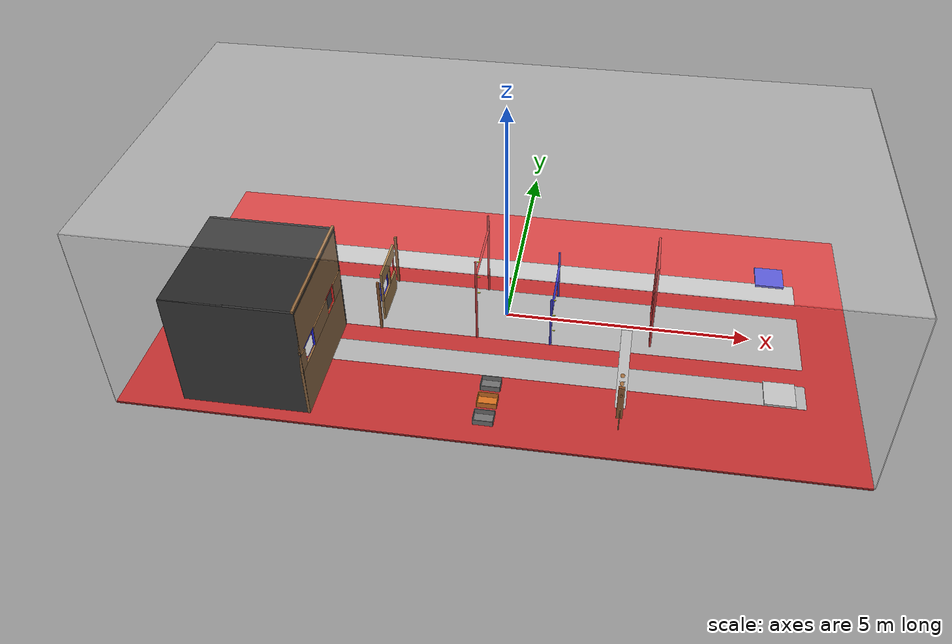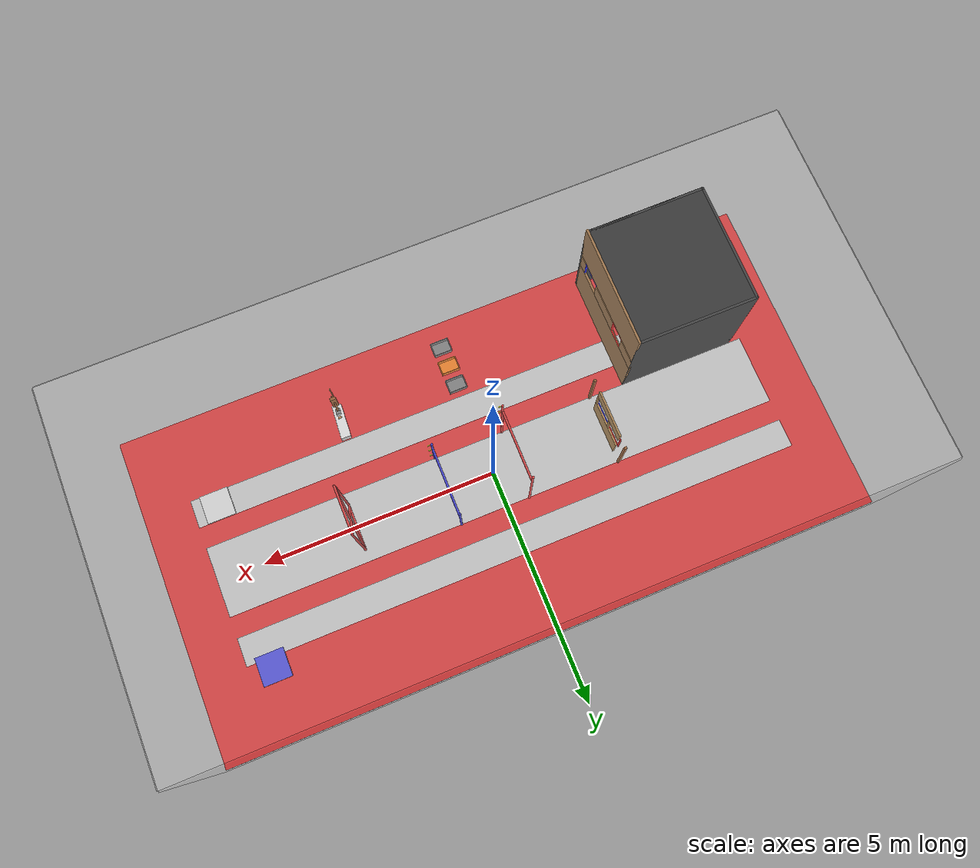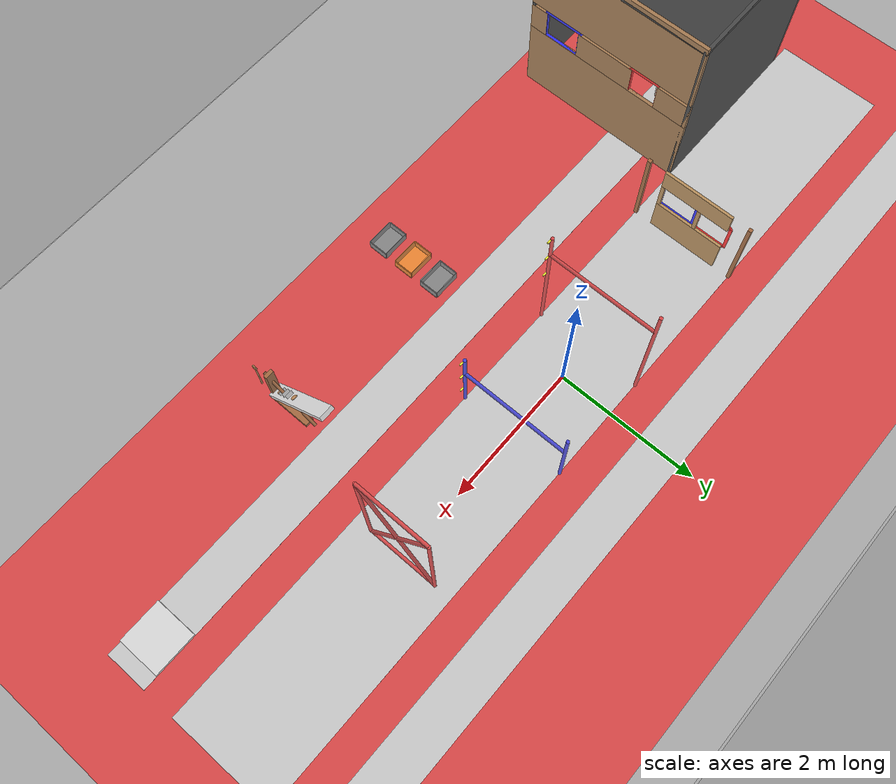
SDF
<?xml version="1.0" ?>
<sdf version="1.9">
  <world name="imav_indoor">

    <!-- Physics -->
    <physics name="1ms" type="ignored">
      <max_step_size>0.001</max_step_size>
      <real_time_factor>1.0</real_time_factor>
    </physics>

    <!-- Plugins -->
    <plugin filename="gz-sim-physics-system"
            name="gz::sim::systems::Physics"/>
    <plugin filename="gz-sim-sensors-system"
            name="gz::sim::systems::Sensors">
      <render_engine>ogre2</render_engine>
    </plugin>
    <plugin filename="gz-sim-scene-broadcaster-system"
            name="gz::sim::systems::SceneBroadcaster"/>
    <plugin filename="gz-sim-user-commands-system"
            name="gz::sim::systems::UserCommands"/>

    <plugin filename="gz-sim-imu-system"
            name="gz::sim::systems::Imu"/>

    <plugin filename="gz-sim-magnetometer-system"
            name="gz::sim::systems::Magnetometer"/>

    <plugin filename="gz-sim-air-pressure-system"
            name="gz::sim::systems::AirPressure"/>

    <plugin filename="gz-sim-navsat-system"
            name="gz::sim::systems::NavSat"/>

    <atmosphere type="adiabatic"/>

    <magnetic_field>6.0e-06 2.3e-05 -4.2e-05</magnetic_field>

    <spherical_coordinates>
      <surface_model>EARTH_WGS84</surface_model>
      <world_frame_orientation>ENU</world_frame_orientation>
      <latitude_deg>47.397742</latitude_deg>
      <longitude_deg>8.545594</longitude_deg>
      <elevation>0</elevation>
      <heading_deg>0</heading_deg>
    </spherical_coordinates>

    <!-- Lighting: main ceiling light -->
    <light type="directional" name="ceiling_light">
      <pose>0 0 4 0 0 0</pose>
      <diffuse>0.9 0.9 0.9 1</diffuse>
      <specular>0.2 0.2 0.2 1</specular>
      <direction>0 0 -1</direction>
      <cast_shadows>false</cast_shadows>
    </light>

    <!-- Additional fill light for even illumination -->
    <light type="point" name="fill_light">
      <pose>0 0 3.5 0 0 0</pose>
      <diffuse>0.5 0.5 0.5 1</diffuse>
      <specular>0.1 0.1 0.1 1</specular>
      <attenuation>
        <range>20</range>
        <linear>0.05</linear>
        <constant>0.8</constant>
      </attenuation>
      <cast_shadows>false</cast_shadows>
    </light>

    <!-- ===== ARENA STRUCTURE ===== -->
    <include>
      <uri>model://arena_walls</uri>
      <pose>0 0 0 0 0 0</pose>
    </include>

    <!-- Textured floor strips (flower pattern under obstacle course and side passages) -->
    <include>
      <uri>model://textured_floor</uri>
      <pose>0 0 0.001 0 0 0</pose>
    </include>

    <!-- ===== MISSION 1: OBSTACLE COURSE ===== -->

    <!-- Takeoff platform (fixed, ArUco Id0) -->
    <include>
      <uri>model://landing_platform_fixed</uri>
      <name>takeoff_platform</name>
      <pose>5.5 -1.5 0 0 0 0</pose>
    </include>

    <!-- Obstacle 1: Window frame (blue 500x400 + red 400x400 openings) -->
    <include>
      <uri>model://window_frame</uri>
      <name>window_obstacle</name>
      <pose>-2.5 0 0 0 0 0</pose>
    </include>

    <!-- Obstacle 2: Red bar (fly over, default 1600mm) -->
    <include>
      <uri>model://red_bar</uri>
      <name>red_bar</name>
      <pose>-0.5 0 0 0 0 0</pose>
    </include>

    <!-- Obstacle 3: Blue bar (fly under, default 800mm) -->
    <include>
      <uri>model://blue_bar</uri>
      <name>blue_bar</name>
      <pose>1.0 0 0 0 0 0</pose>
    </include>

    <!-- Obstacle 4: Pipe/tube X-crossing structure -->
    <include>
      <uri>model://pipe_obstacle</uri>
      <name>pipe_obstacle</name>
      <pose>3.0 0 0 0 0 0</pose>
    </include>

    <!-- Landing platform (moving, ArUco Id1).
         Spring world joint oscillates ±0.5m around this include pose in world Y.
         Oscillation range: Y = [1.0, 2.0], centered on right stripe at Y=1.5. -->
    <include>
      <uri>model://landing_moving_platform</uri>
      <name>landing_platform_moving</name>
      <pose>5.5 1.5 0 0 0 0</pose>
    </include>

    <!-- ===== MISSION 2: DARK ROOM INSPECTION ===== -->
    <!-- Dark room: 2.5m cube. Rotated -90° in yaw so the front wall
         (windows) faces toward Y=0 (the obstacle course). -->
    <include>
      <uri>model://dark_room</uri>
      <name>dark_room</name>
      <pose>-4.5 -2.0 0 0 0 3.14159</pose>
    </include>

    <!-- ===== MISSION 3: HOT SPOT DROP ===== -->
    <!-- Three boxes (396x278x132mm), center box is hot spot. -->
    <include>
      <uri>model://hot_spot_boxes</uri>
      <name>hot_spot_boxes</name>
      <pose>0 -2.5 0 0 0 0</pose>
    </include>

    <!-- ===== MISSION 4: WIND TURBINE INSPECTION ===== -->
    <!-- Blade tilted 45°, copper disc targets, ArUco Id4/5/6, ring stand. -->
    <include>
      <uri>model://wind_turbine_blade</uri>
      <name>wind_turbine</name>
      <pose>2.5 -2.5 0 0 0 1.5708</pose>
    </include>

  </world>
</sdf>

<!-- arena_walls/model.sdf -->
<!-- models/arena_walls/model.sdf -->
<sdf version="1.9">
  <model name="arena_walls">
    <static>true</static>

    <!-- Floor -->
    <link name="floor">
      <collision name="floor_col">
        <geometry><box><size>14 7 0.05</size></box></geometry>
      </collision>
      <visual name="floor_vis">
        <geometry><box><size>14 7 0.05</size></box></geometry>
        <material>
          <ambient>0.8 0.1 0.1 1</ambient>  <!-- red carpet -->
          <diffuse>0.8 0.1 0.1 1</diffuse>
        </material>
      </visual>
      <pose>0 0 -0.025 0 0 0</pose>
    </link>

    <!-- Ceiling (transparent, for realism) -->
    <link name="ceiling">
      <pose>0 0 4 0 0 0</pose>
      <collision name="ceiling_col">
        <geometry><box><size>14 7 0.05</size></box></geometry>
      </collision>
      <visual name="ceiling_vis">
        <geometry><box><size>14 7 0.05</size></box></geometry>
        <material><ambient>1 1 1 0.1</ambient></material>
      </visual>
    </link>

    <!-- North wall -->
    <link name="wall_north">
      <pose>0 3.5 2 0 0 0</pose>
      <collision name="col">
        <geometry><box><size>14 0.05 4</size></box></geometry>
      </collision>
      <visual name="vis">
        <geometry><box><size>14 0.05 4</size></box></geometry>
        <material><ambient>0.9 0.9 0.9 0.1</ambient><diffuse>0.9 0.9 0.9 0.1</diffuse></material>
      </visual>
    </link>

    <!-- South wall -->
    <link name="wall_south">
      <pose>0 -3.5 2 0 0 0</pose>
      <collision name="col">
        <geometry><box><size>14 0.05 4</size></box></geometry>
      </collision>
      <visual name="vis">
        <geometry><box><size>14 0.05 4</size></box></geometry>
        <material><ambient>0.9 0.9 0.9 0.1</ambient><diffuse>0.9 0.9 0.9 0.1</diffuse></material>
      </visual>
    </link>

    <!-- East wall -->
    <link name="wall_east">
      <pose>7 0 2 0 0 0</pose>
      <collision name="col">
        <geometry><box><size>0.05 7 4</size></box></geometry>
      </collision>
      <visual name="vis">
        <geometry><box><size>0.05 7 4</size></box></geometry>
        <material><ambient>0.9 0.9 0.9 0.1</ambient><diffuse>0.9 0.9 0.9 0.1</diffuse></material>
      </visual>
    </link>

    <!-- West wall -->
    <link name="wall_west">
      <pose>-7 0 2 0 0 0</pose>
      <collision name="col">
        <geometry><box><size>0.05 7 4</size></box></geometry>
      </collision>
      <visual name="vis">
        <geometry><box><size>0.05 7 4</size></box></geometry>
        <material><ambient>0.9 0.9 0.9 0.1</ambient><diffuse>0.9 0.9 0.9 0.1</diffuse></material>
      </visual>
    </link>

  </model>
</sdf>

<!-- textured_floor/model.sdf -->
<!-- Three flower-textured floor strips as per rulebook Fig.7 -->
<sdf version="1.9">
  <model name="textured_floor">
    <static>true</static>
    <link name="link">

      <!-- Left side passage strip (Y = -1.5m) -->
      <visual name="left_strip">
        <pose>0 -1.5 0 0 0 0</pose>
        <geometry><box><size>12 0.6 0.002</size></box></geometry>
        <material>
          <pbr>
            <metal>
              <albedo_map>materials/flower_texture.png</albedo_map>
            </metal>
          </pbr>
        </material>
      </visual>

      <!-- Center obstacle course strip (Y = 0) -->
      <visual name="center_strip">
        <pose>0 0 0 0 0 0</pose>
        <geometry><box><size>12 1.5 0.002</size></box></geometry>
        <material>
          <pbr>
            <metal>
              <albedo_map>materials/flower_texture.png</albedo_map>
            </metal>
          </pbr>
        </material>
      </visual>

      <!-- Right side passage strip (Y = +1.5m) -->
      <visual name="right_strip">
        <pose>0 1.5 0 0 0 0</pose>
        <geometry><box><size>12 0.6 0.002</size></box></geometry>
        <material>
          <pbr>
            <metal>
              <albedo_map>materials/flower_texture.png</albedo_map>
            </metal>
          </pbr>
        </material>
      </visual>

    </link>
  </model>
</sdf>

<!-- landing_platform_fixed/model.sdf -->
<!-- Fixed takeoff/landing platform with ArUco ID 0 on top surface.
     1.0 x 1.0m, 50mm thick. -->
<sdf version="1.9">
  <model name="landing_platform_fixed">
    <static>true</static>

    <link name="platform">
      <pose>0 0 0.025 0 0 0</pose>
      <collision name="col">
        <geometry><box><size>0.6 0.6 0.05</size></box></geometry>
      </collision>
      <visual name="vis">
        <geometry><box><size>0.6 0.6 0.05</size></box></geometry>
        <material>
          <ambient>0.8 0.8 0.8 1</ambient>
          <diffuse>0.8 0.8 0.8 1</diffuse>
          <pbr>
            <metal>
              <albedo_map>materials/textures/aruco_markers/id_0_takeoff.png</albedo_map>
            </metal>
          </pbr>
        </material>
      </visual>
    </link>

  </model>
</sdf>

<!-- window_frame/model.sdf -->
<sdf version="1.9">
  <model name="window_frame">
    <static>true</static>

    <!-- Left post (y = -0.75) -->
    <link name="post_left">
      <pose>0 -0.75 0.6 0 0 0</pose>
      <collision name="col"><geometry><box><size>0.05 0.05 1.2</size></box></geometry></collision>
      <visual name="vis">
        <geometry><box><size>0.05 0.05 1.2</size></box></geometry>
        <material><ambient>0.55 0.27 0.07 1</ambient><diffuse>0.55 0.27 0.07 1</diffuse></material>
      </visual>
    </link>

    <!-- Right post (y = +0.75) -->
    <link name="post_right">
      <pose>0 0.75 0.6 0 0 0</pose>
      <collision name="col"><geometry><box><size>0.05 0.05 1.2</size></box></geometry></collision>
      <visual name="vis">
        <geometry><box><size>0.05 0.05 1.2</size></box></geometry>
        <material><ambient>0.55 0.27 0.07 1</ambient><diffuse>0.55 0.27 0.07 1</diffuse></material>
      </visual>
    </link>

    <!-- Board bottom panel: full width, below windows (z=0 to 0.5) -->
    <link name="board_bottom">
      <pose>0 0 0.25 0 0 0</pose>
      <collision name="col"><geometry><box><size>0.04 1.0 0.5</size></box></geometry></collision>
      <visual name="vis">
        <geometry><box><size>0.04 1.0 0.5</size></box></geometry>
        <material><ambient>0.65 0.45 0.2 1</ambient><diffuse>0.65 0.45 0.2 1</diffuse></material>
      </visual>
    </link>

    <!-- Board top panel: full width, above windows (z=0.9 to 1.2) -->
    <link name="board_top">
      <pose>0 0 1.05 0 0 0</pose>
      <collision name="col"><geometry><box><size>0.04 1.0 0.3</size></box></geometry></collision>
      <visual name="vis">
        <geometry><box><size>0.04 1.0 0.3</size></box></geometry>
        <material><ambient>0.65 0.45 0.2 1</ambient><diffuse>0.65 0.45 0.2 1</diffuse></material>
      </visual>
    </link>

    <!-- Board left sliver: left of blue window (y=-0.5 to -0.45), window level -->
    <link name="board_left_sliver">
      <pose>0 -0.475 0.7 0 0 0</pose>
      <collision name="col"><geometry><box><size>0.04 0.05 0.4</size></box></geometry></collision>
      <visual name="vis">
        <geometry><box><size>0.04 0.05 0.4</size></box></geometry>
        <material><ambient>0.65 0.45 0.2 1</ambient><diffuse>0.65 0.45 0.2 1</diffuse></material>
      </visual>
    </link>

    <!-- Board middle sliver: between windows (y=+0.05 to +0.10) -->
    <link name="board_mid_sliver">
      <pose>0 0.075 0.7 0 0 0</pose>
      <collision name="col"><geometry><box><size>0.04 0.05 0.4</size></box></geometry></collision>
      <visual name="vis">
        <geometry><box><size>0.04 0.05 0.4</size></box></geometry>
        <material><ambient>0.65 0.45 0.2 1</ambient><diffuse>0.65 0.45 0.2 1</diffuse></material>
      </visual>
    </link>

    <!-- Blue window border (visual only, no collision) -->
    <!-- Blue window spans y=-0.45 to +0.05, z=0.5 to 0.9 -->
    <link name="blue_border_top">
      <pose>-0.03 -0.20 0.92 0 0 0</pose>
      <visual name="vis">
        <geometry><box><size>0.02 0.54 0.04</size></box></geometry>
        <material><ambient>0 0 1 1</ambient><diffuse>0 0 1 1</diffuse></material>
      </visual>
    </link>
    <link name="blue_border_bot">
      <pose>-0.03 -0.20 0.48 0 0 0</pose>
      <visual name="vis">
        <geometry><box><size>0.02 0.54 0.04</size></box></geometry>
        <material><ambient>0 0 1 1</ambient><diffuse>0 0 1 1</diffuse></material>
      </visual>
    </link>
    <link name="blue_border_left">
      <pose>-0.03 -0.475 0.70 0 0 0</pose>
      <visual name="vis">
        <geometry><box><size>0.02 0.04 0.44</size></box></geometry>
        <material><ambient>0 0 1 1</ambient><diffuse>0 0 1 1</diffuse></material>
      </visual>
    </link>
    <link name="blue_border_right">
      <pose>-0.03 0.025 0.70 0 0 0</pose>
      <visual name="vis">
        <geometry><box><size>0.02 0.04 0.44</size></box></geometry>
        <material><ambient>0 0 1 1</ambient><diffuse>0 0 1 1</diffuse></material>
      </visual>
    </link>

    <!-- Red window border (visual only, no collision) -->
    <!-- Red window spans y=+0.10 to +0.50, z=0.5 to 0.9 -->
    <link name="red_border_top">
      <pose>-0.03 0.30 0.92 0 0 0</pose>
      <visual name="vis">
        <geometry><box><size>0.02 0.44 0.04</size></box></geometry>
        <material><ambient>1 0 0 1</ambient><diffuse>1 0 0 1</diffuse></material>
      </visual>
    </link>
    <link name="red_border_bot">
      <pose>-0.03 0.30 0.48 0 0 0</pose>
      <visual name="vis">
        <geometry><box><size>0.02 0.44 0.04</size></box></geometry>
        <material><ambient>1 0 0 1</ambient><diffuse>1 0 0 1</diffuse></material>
      </visual>
    </link>
    <link name="red_border_left">
      <pose>-0.03 0.075 0.70 0 0 0</pose>
      <visual name="vis">
        <geometry><box><size>0.02 0.04 0.44</size></box></geometry>
        <material><ambient>1 0 0 1</ambient><diffuse>1 0 0 1</diffuse></material>
      </visual>
    </link>
    <link name="red_border_right">
      <pose>-0.03 0.525 0.70 0 0 0</pose>
      <visual name="vis">
        <geometry><box><size>0.02 0.04 0.44</size></box></geometry>
        <material><ambient>1 0 0 1</ambient><diffuse>1 0 0 1</diffuse></material>
      </visual>
    </link>

  </model>
</sdf>

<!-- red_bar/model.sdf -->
<sdf version="1.9">
  <model name="red_bar">
    <static>true</static>

    <!-- Left post -->
    <link name="post_left">
      <pose>0 -0.75 0.99 0 0 0</pose>
      <collision name="col"><geometry><cylinder><radius>0.0225</radius><length>1.98</length></cylinder></geometry></collision>
      <visual name="vis">
        <geometry><cylinder><radius>0.0225</radius><length>1.98</length></cylinder></geometry>
        <material><ambient>0.8 0.1 0.1 1</ambient><diffuse>0.8 0.1 0.1 1</diffuse></material>
      </visual>
    </link>

    <!-- Right post -->
    <link name="post_right">
      <pose>0 0.75 0.99 0 0 0</pose>
      <collision name="col"><geometry><cylinder><radius>0.0225</radius><length>1.98</length></cylinder></geometry></collision>
      <visual name="vis">
        <geometry><cylinder><radius>0.0225</radius><length>1.98</length></cylinder></geometry>
        <material><ambient>0.8 0.1 0.1 1</ambient><diffuse>0.8 0.1 0.1 1</diffuse></material>
      </visual>
    </link>

    <!-- Horizontal bar at 1600mm (middle/default height). Cylinder rotated 90° to lie in Y. -->
    <link name="bar">
      <pose>0 0 1.6 1.5708 0 0</pose>
      <collision name="col"><geometry><cylinder><radius>0.0225</radius><length>1.5</length></cylinder></geometry></collision>
      <visual name="vis">
        <geometry><cylinder><radius>0.0225</radius><length>1.5</length></cylinder></geometry>
        <material><ambient>0.8 0.1 0.1 1</ambient><diffuse>0.8 0.1 0.1 1</diffuse></material>
      </visual>
    </link>

    <!-- Height indicator pegs on left post (visual only): low=1.2m, mid=1.6m, high=1.98m -->
    <link name="peg_low">
      <pose>0.06 -0.75 1.2 0 1.5708 0</pose>
      <visual name="vis">
        <geometry><cylinder><radius>0.012</radius><length>0.05</length></cylinder></geometry>
        <material><ambient>1 1 0 1</ambient><diffuse>1 1 0 1</diffuse></material>
      </visual>
    </link>
    <link name="peg_mid">
      <pose>0.06 -0.75 1.6 0 1.5708 0</pose>
      <visual name="vis">
        <geometry><cylinder><radius>0.012</radius><length>0.05</length></cylinder></geometry>
        <material><ambient>1 1 0 1</ambient><diffuse>1 1 0 1</diffuse></material>
      </visual>
    </link>
    <link name="peg_high">
      <pose>0.06 -0.75 1.98 0 1.5708 0</pose>
      <visual name="vis">
        <geometry><cylinder><radius>0.012</radius><length>0.05</length></cylinder></geometry>
        <material><ambient>1 1 0 1</ambient><diffuse>1 1 0 1</diffuse></material>
      </visual>
    </link>

  </model>
</sdf>

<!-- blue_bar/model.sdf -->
<!-- Blue bar obstacle per rulebook Fig.10a.
     Two posts 1200mm tall, 1500mm apart. ONE horizontal bar (drone flies under).
     Bar default at 800mm (middle step). Marks at 400/800/1200mm. -->
<sdf version="1.9">
  <model name="blue_bar">
    <static>true</static>

    <!-- Left post -->
    <link name="post_left">
      <pose>0 -0.75 0.6 0 0 0</pose>
      <collision name="col"><geometry><cylinder><radius>0.0225</radius><length>1.2</length></cylinder></geometry></collision>
      <visual name="vis">
        <geometry><cylinder><radius>0.0225</radius><length>1.2</length></cylinder></geometry>
        <material><ambient>0.1 0.1 0.8 1</ambient><diffuse>0.1 0.1 0.8 1</diffuse></material>
      </visual>
    </link>

    <!-- Right post -->
    <link name="post_right">
      <pose>0 0.75 0.6 0 0 0</pose>
      <collision name="col"><geometry><cylinder><radius>0.0225</radius><length>1.2</length></cylinder></geometry></collision>
      <visual name="vis">
        <geometry><cylinder><radius>0.0225</radius><length>1.2</length></cylinder></geometry>
        <material><ambient>0.1 0.1 0.8 1</ambient><diffuse>0.1 0.1 0.8 1</diffuse></material>
      </visual>
    </link>

    <!-- Horizontal bar at 800mm (middle/default height). -->
    <link name="bar">
      <pose>0 0 0.8 1.5708 0 0</pose>
      <collision name="col"><geometry><cylinder><radius>0.0225</radius><length>1.5</length></cylinder></geometry></collision>
      <visual name="vis">
        <geometry><cylinder><radius>0.0225</radius><length>1.5</length></cylinder></geometry>
        <material><ambient>0.1 0.1 0.8 1</ambient><diffuse>0.1 0.1 0.8 1</diffuse></material>
      </visual>
    </link>

    <!-- Height indicator pegs (visual only): low=0.4m, mid=0.8m, high=1.2m -->
    <link name="peg_low">
      <pose>0.06 -0.75 0.4 0 1.5708 0</pose>
      <visual name="vis">
        <geometry><cylinder><radius>0.012</radius><length>0.05</length></cylinder></geometry>
        <material><ambient>1 1 0 1</ambient><diffuse>1 1 0 1</diffuse></material>
      </visual>
    </link>
    <link name="peg_mid">
      <pose>0.06 -0.75 0.8 0 1.5708 0</pose>
      <visual name="vis">
        <geometry><cylinder><radius>0.012</radius><length>0.05</length></cylinder></geometry>
        <material><ambient>1 1 0 1</ambient><diffuse>1 1 0 1</diffuse></material>
      </visual>
    </link>
    <link name="peg_high">
      <pose>0.06 -0.75 1.2 0 1.5708 0</pose>
      <visual name="vis">
        <geometry><cylinder><radius>0.012</radius><length>0.05</length></cylinder></geometry>
        <material><ambient>1 1 0 1</ambient><diffuse>1 1 0 1</diffuse></material>
      </visual>
    </link>

  </model>
</sdf>

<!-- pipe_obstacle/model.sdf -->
<sdf version="1.9">
  <model name="pipe_obstacle">
    <static>true</static>

    <!-- Vertical posts at x=0, y=±0.5 -->
    <link name="post_left">
      <pose>0 -0.5 1.0 0 0 0</pose>
      <collision name="col"><geometry><cylinder><radius>0.0225</radius><length>2.0</length></cylinder></geometry></collision>
      <visual name="vis">
        <geometry><cylinder><radius>0.0225</radius><length>2.0</length></cylinder></geometry>
        <material><ambient>0.8 0.1 0.1 1</ambient><diffuse>0.8 0.1 0.1 1</diffuse></material>
      </visual>
    </link>

    <link name="post_right">
      <pose>0 0.5 1.0 0 0 0</pose>
      <collision name="col"><geometry><cylinder><radius>0.0225</radius><length>2.0</length></cylinder></geometry></collision>
      <visual name="vis">
        <geometry><cylinder><radius>0.0225</radius><length>2.0</length></cylinder></geometry>
        <material><ambient>0.8 0.1 0.1 1</ambient><diffuse>0.8 0.1 0.1 1</diffuse></material>
      </visual>
    </link>

    <!-- Diagonal 1: (y=-0.5,z=0) → (y=+0.5,z=2.0). Center at (y=0,z=1.0). Roll = -0.4636 rad. -->
    <link name="diag_1">
      <pose>0 0 1.0 -0.4636 0 0</pose>
      <collision name="col"><geometry><cylinder><radius>0.0225</radius><length>2.236</length></cylinder></geometry></collision>
      <visual name="vis">
        <geometry><cylinder><radius>0.0225</radius><length>2.236</length></cylinder></geometry>
        <material><ambient>0.8 0.1 0.1 1</ambient><diffuse>0.8 0.1 0.1 1</diffuse></material>
      </visual>
    </link>

    <!-- Diagonal 2: (y=+0.5,z=0) → (y=-0.5,z=2.0). Center at (y=0,z=1.0). Roll = +0.4636 rad. -->
    <link name="diag_2">
      <pose>0 0 1.0 0.4636 0 0</pose>
      <collision name="col"><geometry><cylinder><radius>0.0225</radius><length>2.236</length></cylinder></geometry></collision>
      <visual name="vis">
        <geometry><cylinder><radius>0.0225</radius><length>2.236</length></cylinder></geometry>
        <material><ambient>0.8 0.1 0.1 1</ambient><diffuse>0.8 0.1 0.1 1</diffuse></material>
      </visual>
    </link>

    <!-- Top cross-beam connecting posts -->
    <link name="top_beam">
      <pose>0 0 2.0 1.5708 0 0</pose>
      <collision name="col"><geometry><cylinder><radius>0.0225</radius><length>1.0</length></cylinder></geometry></collision>
      <visual name="vis">
        <geometry><cylinder><radius>0.0225</radius><length>1.0</length></cylinder></geometry>
        <material><ambient>0.8 0.1 0.1 1</ambient><diffuse>0.8 0.1 0.1 1</diffuse></material>
      </visual>
    </link>

    <!-- Bottom cross-beam connecting posts -->
    <link name="bot_beam">
      <pose>0 0 0.05 1.5708 0 0</pose>
      <collision name="col"><geometry><cylinder><radius>0.0225</radius><length>1.0</length></cylinder></geometry></collision>
      <visual name="vis">
        <geometry><cylinder><radius>0.0225</radius><length>1.0</length></cylinder></geometry>
        <material><ambient>0.8 0.1 0.1 1</ambient><diffuse>0.8 0.1 0.1 1</diffuse></material>
      </visual>
    </link>

  </model>
</sdf>

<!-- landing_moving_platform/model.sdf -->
<sdf version="1.9">
  <model name="landing_platform_moving">

    <link name="base">
      <!-- Initial Y offset gives the spring its starting displacement -->
      <pose>0 0.5 0.025 0 0 0</pose>
      <inertial>
        <mass>5.0</mass>
        <inertia>
          <ixx>0.151</ixx><iyy>0.151</iyy><izz>0.300</izz>
          <ixy>0</ixy><ixz>0</ixz><iyz>0</iyz>
        </inertia>
      </inertial>
      <collision name="col">
        <geometry><box><size>0.6 0.6 0.05</size></box></geometry>
        <surface>
          <friction>
            <ode><mu>0</mu><mu2>0</mu2></ode>
          </friction>
          <contact>
            <ode><max_vel>0</max_vel></ode>
          </contact>
        </surface>
      </collision>
      <visual name="vis">
        <geometry><box><size>0.6 0.6 0.05</size></box></geometry>
        <material>
          <ambient>0.2 0.2 0.8 1</ambient>
          <diffuse>0.2 0.2 0.8 1</diffuse>
          <pbr>
            <metal>
              <albedo_map>materials/textures/aruco_markers/id_1_landing.png</albedo_map>
            </metal>
          </pbr>
        </material>
      </visual>
    </link>

    <joint name="world_joint" type="prismatic">
      <parent>world</parent>
      <child>base</child>
      <axis>
        <xyz>0 1 0</xyz>
        <dynamics>
          <spring_reference>0</spring_reference>
          <spring_stiffness>3.09</spring_stiffness>
          <damping>0.5</damping>
        </dynamics>
        <limit>
          <lower>-0.6</lower>
          <upper>0.6</upper>
        </limit>
      </axis>
    </joint>

  </model>
</sdf>

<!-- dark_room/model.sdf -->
<sdf version="1.9">
  <model name="dark_room">
    <static>true</static>

    <!-- ==================== FRONT WALL (with windows) ==================== -->
    <!-- Wall is at local x = -1.25, windows face +x direction -->

    <!-- Bottom strip: full width, below both windows -->
    <link name="front_bottom">
      <pose>-1.225 0 0.525 0 0 0</pose>
      <visual name="vis">
        <geometry><box><size>0.05 2.5 1.05</size></box></geometry>
        <material><ambient>0.55 0.35 0.15 1</ambient><diffuse>0.55 0.35 0.15 1</diffuse></material>
      </visual>
      <collision name="col">
        <geometry><box><size>0.05 2.5 1.05</size></box></geometry>
      </collision>
    </link>

    <!-- Top strip: full width, above both windows -->
    <link name="front_top">
      <pose>-1.225 0 2.025 0 0 0</pose>
      <visual name="vis">
        <geometry><box><size>0.05 2.5 1.05</size></box></geometry>
        <material><ambient>0.55 0.35 0.15 1</ambient><diffuse>0.55 0.35 0.15 1</diffuse></material>
      </visual>
      <collision name="col">
        <geometry><box><size>0.05 2.5 1.05</size></box></geometry>
      </collision>
    </link>

    <!-- Left panel: solid, left of red window -->
    <!-- Red window spans y: -0.75 to -0.35, width = 0.40m -->
    <link name="front_left">
      <pose>-1.225 -1.0 1.25 0 0 0</pose>
      <visual name="vis">
        <geometry><box><size>0.05 0.5 0.40</size></box></geometry>
        <material><ambient>0.55 0.35 0.15 1</ambient><diffuse>0.55 0.35 0.15 1</diffuse></material>
      </visual>
      <collision name="col">
        <geometry><box><size>0.05 0.5 0.40</size></box></geometry>
      </collision>
    </link>

    <!-- Middle panel: between red and blue windows -->
    <!-- Between y=-0.35 and y=0.50, width = 0.85m -->
    <link name="front_middle">
      <pose>-1.225 0.075 1.25 0 0 0</pose>
      <visual name="vis">
        <geometry><box><size>0.05 0.85 0.40</size></box></geometry>
        <material><ambient>0.55 0.35 0.15 1</ambient><diffuse>0.55 0.35 0.15 1</diffuse></material>
      </visual>
      <collision name="col">
        <geometry><box><size>0.05 0.85 0.40</size></box></geometry>
      </collision>
    </link>

    <!-- Right panel: right of blue window -->
    <!-- Blue window spans y: 0.50 to 1.00, width = 0.50m -->
    <link name="front_right">
      <pose>-1.225 1.125 1.25 0 0 0</pose>
      <visual name="vis">
        <geometry><box><size>0.05 0.25 0.40</size></box></geometry>
        <material><ambient>0.55 0.35 0.15 1</ambient><diffuse>0.55 0.35 0.15 1</diffuse></material>
      </visual>
      <collision name="col">
        <geometry><box><size>0.05 0.25 0.40</size></box></geometry>
      </collision>
    </link>

    <!-- ==================== WINDOW FRAMES ==================== -->

    <!-- Red window frame (400x400mm opening) -->
    <!-- Top border -->
    <link name="red_win_top">
      <pose>-1.225 -0.55 1.475 0 0 0</pose>
      <visual name="vis">
        <geometry><box><size>0.04 0.44 0.05</size></box></geometry>
        <material><ambient>1 0 0 1</ambient><diffuse>1 0 0 1</diffuse></material>
      </visual>
      <collision name="col"><geometry><box><size>0.04 0.44 0.05</size></box></geometry></collision>
    </link>
    <!-- Bottom border -->
    <link name="red_win_bot">
      <pose>-1.225 -0.55 1.025 0 0 0</pose>
      <visual name="vis">
        <geometry><box><size>0.04 0.44 0.05</size></box></geometry>
        <material><ambient>1 0 0 1</ambient><diffuse>1 0 0 1</diffuse></material>
      </visual>
      <collision name="col"><geometry><box><size>0.04 0.44 0.05</size></box></geometry></collision>
    </link>
    <!-- Left border -->
    <link name="red_win_left">
      <pose>-1.225 -0.77 1.25 0 0 0</pose>
      <visual name="vis">
        <geometry><box><size>0.04 0.05 0.40</size></box></geometry>
        <material><ambient>1 0 0 1</ambient><diffuse>1 0 0 1</diffuse></material>
      </visual>
      <collision name="col"><geometry><box><size>0.04 0.05 0.40</size></box></geometry></collision>
    </link>
    <!-- Right border -->
    <link name="red_win_right">
      <pose>-1.225 -0.33 1.25 0 0 0</pose>
      <visual name="vis">
        <geometry><box><size>0.04 0.05 0.40</size></box></geometry>
        <material><ambient>1 0 0 1</ambient><diffuse>1 0 0 1</diffuse></material>
      </visual>
      <collision name="col"><geometry><box><size>0.04 0.05 0.40</size></box></geometry></collision>
    </link>

    <!-- Blue window frame (500x400mm opening) -->
    <!-- Top border -->
    <link name="blue_win_top">
      <pose>-1.225 0.75 1.475 0 0 0</pose>
      <visual name="vis">
        <geometry><box><size>0.04 0.54 0.05</size></box></geometry>
        <material><ambient>0 0 1 1</ambient><diffuse>0 0 1 1</diffuse></material>
      </visual>
      <collision name="col"><geometry><box><size>0.04 0.54 0.05</size></box></geometry></collision>
    </link>
    <!-- Bottom border -->
    <link name="blue_win_bot">
      <pose>-1.225 0.75 1.025 0 0 0</pose>
      <visual name="vis">
        <geometry><box><size>0.04 0.54 0.05</size></box></geometry>
        <material><ambient>0 0 1 1</ambient><diffuse>0 0 1 1</diffuse></material>
      </visual>
      <collision name="col"><geometry><box><size>0.04 0.54 0.05</size></box></geometry></collision>
    </link>
    <!-- Left border -->
    <link name="blue_win_left">
      <pose>-1.225 0.48 1.25 0 0 0</pose>
      <visual name="vis">
        <geometry><box><size>0.04 0.05 0.40</size></box></geometry>
        <material><ambient>0 0 1 1</ambient><diffuse>0 0 1 1</diffuse></material>
      </visual>
      <collision name="col"><geometry><box><size>0.04 0.05 0.40</size></box></geometry></collision>
    </link>
    <!-- Right border -->
    <link name="blue_win_right">
      <pose>-1.225 1.02 1.25 0 0 0</pose>
      <visual name="vis">
        <geometry><box><size>0.04 0.05 0.40</size></box></geometry>
        <material><ambient>0 0 1 1</ambient><diffuse>0 0 1 1</diffuse></material>
      </visual>
      <collision name="col"><geometry><box><size>0.04 0.05 0.40</size></box></geometry></collision>
    </link>

    <!-- ==================== REMAINING WALLS ==================== -->

    <!-- Back wall (solid) -->
    <link name="wall_back">
      <pose>1.225 0 1.25 0 0 0</pose>
      <visual name="vis">
        <geometry><box><size>0.05 2.5 2.5</size></box></geometry>
        <material><ambient>0.1 0.1 0.1 1</ambient><diffuse>0.1 0.1 0.1 1</diffuse></material>
      </visual>
      <collision name="col"><geometry><box><size>0.05 2.5 2.5</size></box></geometry></collision>
    </link>

    <!-- Left wall -->
    <link name="wall_left">
      <pose>0 -1.225 1.25 0 0 0</pose>
      <visual name="vis">
        <geometry><box><size>2.5 0.05 2.5</size></box></geometry>
        <material><ambient>0.1 0.1 0.1 1</ambient><diffuse>0.1 0.1 0.1 1</diffuse></material>
      </visual>
      <collision name="col"><geometry><box><size>2.5 0.05 2.5</size></box></geometry></collision>
    </link>

    <!-- Right wall -->
    <link name="wall_right">
      <pose>0 1.225 1.25 0 0 0</pose>
      <visual name="vis">
        <geometry><box><size>2.5 0.05 2.5</size></box></geometry>
        <material><ambient>0.1 0.1 0.1 1</ambient><diffuse>0.1 0.1 0.1 1</diffuse></material>
      </visual>
      <collision name="col"><geometry><box><size>2.5 0.05 2.5</size></box></geometry></collision>
    </link>

    <!-- Ceiling -->
    <link name="ceiling">
      <pose>0 0 2.475 0 0 0</pose>
      <visual name="vis">
        <geometry><box><size>2.5 2.5 0.05</size></box></geometry>
        <material><ambient>0.05 0.05 0.05 1</ambient><diffuse>0.05 0.05 0.05 1</diffuse></material>
      </visual>
      <collision name="col"><geometry><box><size>2.5 2.5 0.05</size></box></geometry></collision>
    </link>

    <!-- ==================== INTERIOR LIGHT (very dim) ==================== -->
    <light name="interior_light" type="point">
      <pose>0 0 2.2 0 0 0</pose>
      <diffuse>0.05 0.05 0.05 1</diffuse>    <!-- very dark -->
      <specular>0 0 0 1</specular>
      <attenuation>
        <range>3</range>
        <linear>0.5</linear>
        <constant>0.8</constant>
      </attenuation>
      <cast_shadows>false</cast_shadows>
    </light>

    <!-- ==================== BABY PLACEHOLDERS ==================== -->
    <!-- Reposition these on competition day -->

    <link name="baby_1">
      <pose>0.5 0.3 0.2 0 0 0</pose>
      <visual name="vis">
        <geometry><cylinder><radius>0.1</radius><length>0.35</length></cylinder></geometry>
        <material><ambient>0.9 0.8 0.7 1</ambient></material>
      </visual>
    </link>

    <link name="baby_2">
      <pose>-0.3 -0.4 0.2 0 0 0</pose>
      <visual name="vis">
        <geometry><cylinder><radius>0.1</radius><length>0.35</length></cylinder></geometry>
        <material><ambient>0.9 0.8 0.7 1</ambient></material>
      </visual>
    </link>

  </model>
</sdf>

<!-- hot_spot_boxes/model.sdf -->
<sdf version="1.9">
  <model name="hot_spot_boxes">
    <static>true</static>

    <!-- Wall thickness -->
    <!-- Box outer: 0.396 x 0.278 x 0.132m. Wall thickness: 0.01m. -->

    <!-- ===== LEFT BOX (y = -0.438m center, cold) ===== -->
    <link name="left_base">
      <pose>0 -0.438 0.005 0 0 0</pose>
      <collision name="col"><geometry><box><size>0.396 0.278 0.01</size></box></geometry></collision>
      <visual name="vis">
        <geometry><box><size>0.396 0.278 0.01</size></box></geometry>
        <material><ambient>0.4 0.4 0.4 1</ambient><diffuse>0.4 0.4 0.4 1</diffuse></material>
      </visual>
    </link>
    <link name="left_front">
      <pose>0.193 -0.438 0.066 0 0 0</pose>
      <collision name="col"><geometry><box><size>0.01 0.278 0.122</size></box></geometry></collision>
      <visual name="vis">
        <geometry><box><size>0.01 0.278 0.122</size></box></geometry>
        <material><ambient>0.4 0.4 0.4 1</ambient><diffuse>0.4 0.4 0.4 1</diffuse></material>
      </visual>
    </link>
    <link name="left_back">
      <pose>-0.193 -0.438 0.066 0 0 0</pose>
      <collision name="col"><geometry><box><size>0.01 0.278 0.122</size></box></geometry></collision>
      <visual name="vis">
        <geometry><box><size>0.01 0.278 0.122</size></box></geometry>
        <material><ambient>0.4 0.4 0.4 1</ambient><diffuse>0.4 0.4 0.4 1</diffuse></material>
      </visual>
    </link>
    <link name="left_sideL">
      <pose>0 -0.577 0.066 0 0 0</pose>
      <collision name="col"><geometry><box><size>0.376 0.01 0.122</size></box></geometry></collision>
      <visual name="vis">
        <geometry><box><size>0.376 0.01 0.122</size></box></geometry>
        <material><ambient>0.4 0.4 0.4 1</ambient><diffuse>0.4 0.4 0.4 1</diffuse></material>
      </visual>
    </link>
    <link name="left_sideR">
      <pose>0 -0.299 0.066 0 0 0</pose>
      <collision name="col"><geometry><box><size>0.376 0.01 0.122</size></box></geometry></collision>
      <visual name="vis">
        <geometry><box><size>0.376 0.01 0.122</size></box></geometry>
        <material><ambient>0.4 0.4 0.4 1</ambient><diffuse>0.4 0.4 0.4 1</diffuse></material>
      </visual>
    </link>

    <!-- ===== CENTER BOX (y = 0.0, HOT - orange) ===== -->
    <link name="hot_base">
      <pose>0 0 0.005 0 0 0</pose>
      <collision name="col"><geometry><box><size>0.396 0.278 0.01</size></box></geometry></collision>
      <visual name="vis">
        <geometry><box><size>0.396 0.278 0.01</size></box></geometry>
        <material><ambient>0.9 0.4 0.0 1</ambient><diffuse>0.9 0.4 0.0 1</diffuse></material>
      </visual>
    </link>
    <link name="hot_front">
      <pose>0.193 0 0.066 0 0 0</pose>
      <collision name="col"><geometry><box><size>0.01 0.278 0.122</size></box></geometry></collision>
      <visual name="vis">
        <geometry><box><size>0.01 0.278 0.122</size></box></geometry>
        <material><ambient>0.9 0.4 0.0 1</ambient><diffuse>0.9 0.4 0.0 1</diffuse></material>
      </visual>
    </link>
    <link name="hot_back">
      <pose>-0.193 0 0.066 0 0 0</pose>
      <collision name="col"><geometry><box><size>0.01 0.278 0.122</size></box></geometry></collision>
      <visual name="vis">
        <geometry><box><size>0.01 0.278 0.122</size></box></geometry>
        <material><ambient>0.9 0.4 0.0 1</ambient><diffuse>0.9 0.4 0.0 1</diffuse></material>
      </visual>
    </link>
    <link name="hot_sideL">
      <pose>0 -0.139 0.066 0 0 0</pose>
      <collision name="col"><geometry><box><size>0.376 0.01 0.122</size></box></geometry></collision>
      <visual name="vis">
        <geometry><box><size>0.376 0.01 0.122</size></box></geometry>
        <material><ambient>0.9 0.4 0.0 1</ambient><diffuse>0.9 0.4 0.0 1</diffuse></material>
      </visual>
    </link>
    <link name="hot_sideR">
      <pose>0 0.139 0.066 0 0 0</pose>
      <collision name="col"><geometry><box><size>0.376 0.01 0.122</size></box></geometry></collision>
      <visual name="vis">
        <geometry><box><size>0.376 0.01 0.122</size></box></geometry>
        <material><ambient>0.9 0.4 0.0 1</ambient><diffuse>0.9 0.4 0.0 1</diffuse></material>
      </visual>
    </link>

    <!-- ===== RIGHT BOX (y = +0.438m, cold) ===== -->
    <link name="right_base">
      <pose>0 0.438 0.005 0 0 0</pose>
      <collision name="col"><geometry><box><size>0.396 0.278 0.01</size></box></geometry></collision>
      <visual name="vis">
        <geometry><box><size>0.396 0.278 0.01</size></box></geometry>
        <material><ambient>0.4 0.4 0.4 1</ambient><diffuse>0.4 0.4 0.4 1</diffuse></material>
      </visual>
    </link>
    <link name="right_front">
      <pose>0.193 0.438 0.066 0 0 0</pose>
      <collision name="col"><geometry><box><size>0.01 0.278 0.122</size></box></geometry></collision>
      <visual name="vis">
        <geometry><box><size>0.01 0.278 0.122</size></box></geometry>
        <material><ambient>0.4 0.4 0.4 1</ambient><diffuse>0.4 0.4 0.4 1</diffuse></material>
      </visual>
    </link>
    <link name="right_back">
      <pose>-0.193 0.438 0.066 0 0 0</pose>
      <collision name="col"><geometry><box><size>0.01 0.278 0.122</size></box></geometry></collision>
      <visual name="vis">
        <geometry><box><size>0.01 0.278 0.122</size></box></geometry>
        <material><ambient>0.4 0.4 0.4 1</ambient><diffuse>0.4 0.4 0.4 1</diffuse></material>
      </visual>
    </link>
    <link name="right_sideL">
      <pose>0 0.299 0.066 0 0 0</pose>
      <collision name="col"><geometry><box><size>0.376 0.01 0.122</size></box></geometry></collision>
      <visual name="vis">
        <geometry><box><size>0.376 0.01 0.122</size></box></geometry>
        <material><ambient>0.4 0.4 0.4 1</ambient><diffuse>0.4 0.4 0.4 1</diffuse></material>
      </visual>
    </link>
    <link name="right_sideR">
      <pose>0 0.577 0.066 0 0 0</pose>
      <collision name="col"><geometry><box><size>0.376 0.01 0.122</size></box></geometry></collision>
      <visual name="vis">
        <geometry><box><size>0.376 0.01 0.122</size></box></geometry>
        <material><ambient>0.4 0.4 0.4 1</ambient><diffuse>0.4 0.4 0.4 1</diffuse></material>
      </visual>
    </link>

  </model>
</sdf>

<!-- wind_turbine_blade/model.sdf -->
<sdf version="1.9">
  <model name="wind_turbine_blade">
    <static>true</static>

    <!-- ===== SUPPORT STAND ===== -->
    <!-- Vertical back support -->
    <link name="stand_vertical">
      <pose>0 0 0.4 0 0 0</pose>
      <collision name="col"><geometry><box><size>0.05 0.12 0.8</size></box></geometry></collision>
      <visual name="vis">
        <geometry><box><size>0.05 0.12 0.8</size></box></geometry>
        <material><ambient>0.55 0.27 0.07 1</ambient><diffuse>0.55 0.27 0.07 1</diffuse></material>
      </visual>
    </link>
    <!-- Horizontal base -->
    <link name="stand_base">
      <pose>0.2615 0 0.025 0 0 0</pose>
      <collision name="col"><geometry><box><size>0.523 0.12 0.05</size></box></geometry></collision>
      <visual name="vis">
        <geometry><box><size>0.523 0.12 0.05</size></box></geometry>
        <material><ambient>0.55 0.27 0.07 1</ambient><diffuse>0.55 0.27 0.07 1</diffuse></material>
      </visual>
    </link>
    <!-- Diagonal brace (hypotenuse): from (0.025, z=0.8) to (0.523, z=0.05), length=sqrt(0.498^2+0.75^2)=0.898m, angle=atan(0.75/0.498)=56.4 deg -->
    <link name="stand_brace">
      <pose>0.274 0 0.425 0 -0.9827 0</pose>
      <collision name="col"><geometry><cylinder><radius>0.02</radius><length>0.898</length></cylinder></geometry></collision>
      <visual name="vis">
        <geometry><cylinder><radius>0.02</radius><length>0.898</length></cylinder></geometry>
        <material><ambient>0.55 0.27 0.07 1</ambient><diffuse>0.55 0.27 0.07 1</diffuse></material>
      </visual>
    </link>

    <!-- ===== BLADE ===== -->
    <!-- Box 1.45m x 0.2m x 0.06m, pitched -45 deg. Center at (0.513, 0, 0.763). -->
    <link name="blade">
      <pose>0.513 0 0.763 0 -0.7854 0</pose>
      <collision name="col"><geometry><box><size>1.45 0.2 0.06</size></box></geometry></collision>
      <visual name="vis">
        <geometry><box><size>1.45 0.2 0.06</size></box></geometry>
        <material><ambient>0.85 0.85 0.85 1</ambient><diffuse>0.85 0.85 0.85 1</diffuse></material>
      </visual>
    </link>

    <!-- ===== ARUCO MARKERS ON BLADE (visual panels) ===== -->
    <!-- Three ArUco markers (100mm square) along blade top face.
         Placed at same rotation as copper discs (pitch=-0.7854). -->
    <link name="aruco_id4">
      <pose>0.185 0 0.476 0 -0.7854 0</pose>
      <visual name="vis">
        <geometry><box><size>0.005 0.1 0.1</size></box></geometry>
        <material>
          <pbr><metal>
            <albedo_map>materials/textures/aruco_markers/id_4_wind.png</albedo_map>
          </metal></pbr>
        </material>
      </visual>
    </link>
    <link name="aruco_id5">
      <pose>0.255 0 0.547 0 -0.7854 0</pose>
      <visual name="vis">
        <geometry><box><size>0.005 0.1 0.1</size></box></geometry>
        <material>
          <pbr><metal>
            <albedo_map>materials/textures/aruco_markers/id_5_wind.png</albedo_map>
          </metal></pbr>
        </material>
      </visual>
    </link>
    <link name="aruco_id6">
      <pose>0.326 0 0.618 0 -0.7854 0</pose>
      <visual name="vis">
        <geometry><box><size>0.005 0.1 0.1</size></box></geometry>
        <material>
          <pbr><metal>
            <albedo_map>materials/textures/aruco_markers/id_6_wind.png</albedo_map>
          </metal></pbr>
        </material>
      </visual>
    </link>

    <!-- ===== COPPER DISC TARGETS ===== -->
    <!-- Cylinders flat on blade face: radius=0.04m, length=0.02m, same pitch as blade normal. -->
    <link name="copper_1">
      <pose>0.120 0 0.413 0 -0.7854 0</pose>
      <collision name="col"><geometry><cylinder><radius>0.04</radius><length>0.02</length></cylinder></geometry></collision>
      <visual name="vis">
        <geometry><cylinder><radius>0.04</radius><length>0.02</length></cylinder></geometry>
        <material><ambient>0.72 0.45 0.2 1</ambient><diffuse>0.72 0.45 0.2 1</diffuse></material>
      </visual>
    </link>
    <link name="copper_2">
      <pose>0.227 0 0.519 0 -0.7854 0</pose>
      <collision name="col"><geometry><cylinder><radius>0.04</radius><length>0.02</length></cylinder></geometry></collision>
      <visual name="vis">
        <geometry><cylinder><radius>0.04</radius><length>0.02</length></cylinder></geometry>
        <material><ambient>0.72 0.45 0.2 1</ambient><diffuse>0.72 0.45 0.2 1</diffuse></material>
      </visual>
    </link>
    <link name="copper_3">
      <pose>0.297 0 0.590 0 -0.7854 0</pose>
      <collision name="col"><geometry><cylinder><radius>0.04</radius><length>0.02</length></cylinder></geometry></collision>
      <visual name="vis">
        <geometry><cylinder><radius>0.04</radius><length>0.02</length></cylinder></geometry>
        <material><ambient>0.72 0.45 0.2 1</ambient><diffuse>0.72 0.45 0.2 1</diffuse></material>
      </visual>
    </link>
    <link name="copper_4">
      <pose>0.403 0 0.696 0 -0.7854 0</pose>
      <collision name="col"><geometry><cylinder><radius>0.04</radius><length>0.02</length></cylinder></geometry></collision>
      <visual name="vis">
        <geometry><cylinder><radius>0.04</radius><length>0.02</length></cylinder></geometry>
        <material><ambient>0.72 0.45 0.2 1</ambient><diffuse>0.72 0.45 0.2 1</diffuse></material>
      </visual>
    </link>

    <!-- ===== COPPER RING PICKUP STAND ===== -->
    <!-- Post: 500mm tall at x=-0.3 (away from blade structure). -->
    <link name="ring_post">
      <pose>-0.3 0 0.25 0 0 0</pose>
      <collision name="col"><geometry><cylinder><radius>0.01</radius><length>0.5</length></cylinder></geometry></collision>
      <visual name="vis">
        <geometry><cylinder><radius>0.01</radius><length>0.5</length></cylinder></geometry>
        <material><ambient>0.72 0.45 0.2 1</ambient><diffuse>0.72 0.45 0.2 1</diffuse></material>
      </visual>
    </link>
    <!-- Copper ring (torus approximated as thin cylinder at top of post). -->
    <link name="ring">
      <pose>-0.3 0 0.51 1.5708 0 0</pose>
      <collision name="col"><geometry><cylinder><radius>0.04</radius><length>0.015</length></cylinder></geometry></collision>
      <visual name="vis">
        <geometry><cylinder><radius>0.04</radius><length>0.015</length></cylinder></geometry>
        <material><ambient>0.72 0.45 0.2 1</ambient><diffuse>0.72 0.45 0.2 1</diffuse></material>
      </visual>
    </link>

  </model>
</sdf>
